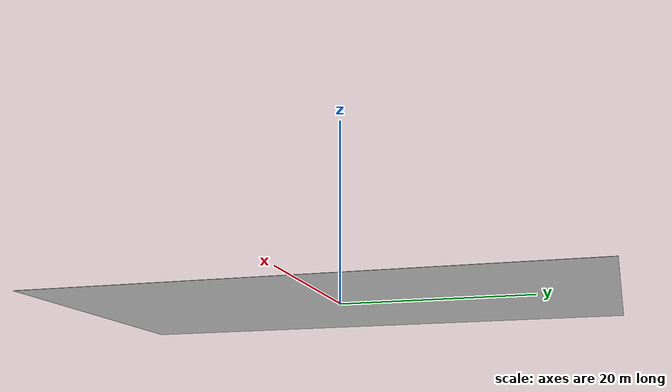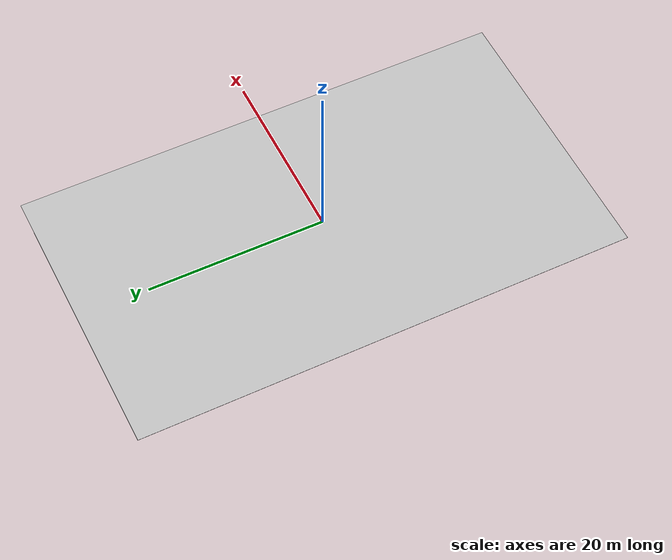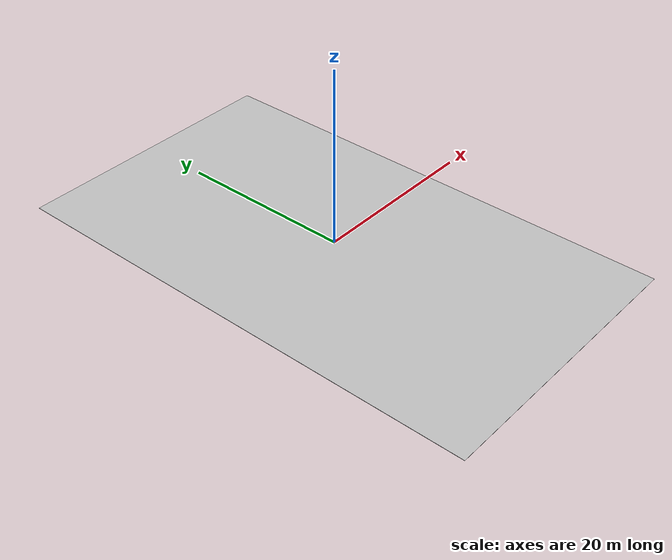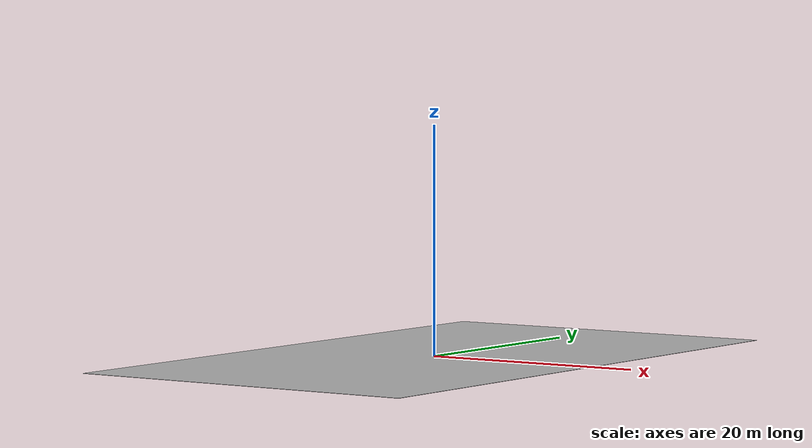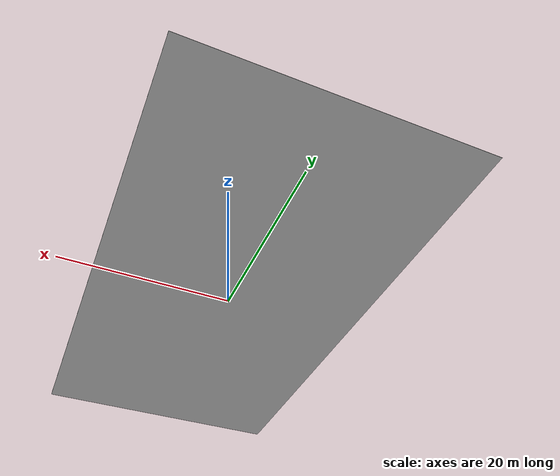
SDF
<?xml version="1.0" ?>
<sdf version="1.5">
  <model name="quad_ground">
    <static>true</static>
    <link name="ground">
      <collision name="groundc">
        <geometry>
          <box>
            <size>32 56 0.03</size>
          </box>
        </geometry>
      </collision>
      <visual name="groundv">
        <geometry>
          <box>
            <size>32 56 0.03</size>
          </box>
        </geometry>
        <material>
          <script>
            <uri>model://quad_ground/materials/scripts</uri>
            <uri>model://quad_ground/materials/textures</uri>
            <name>vrc/quad_ground</name>
          </script>
        </material>
      </visual>
    </link>

  </model>
</sdf>
